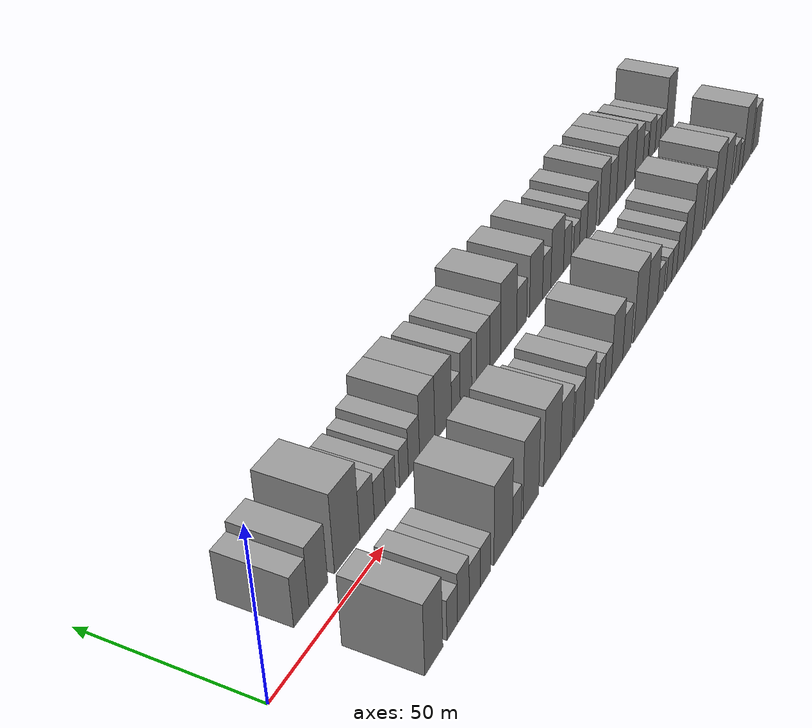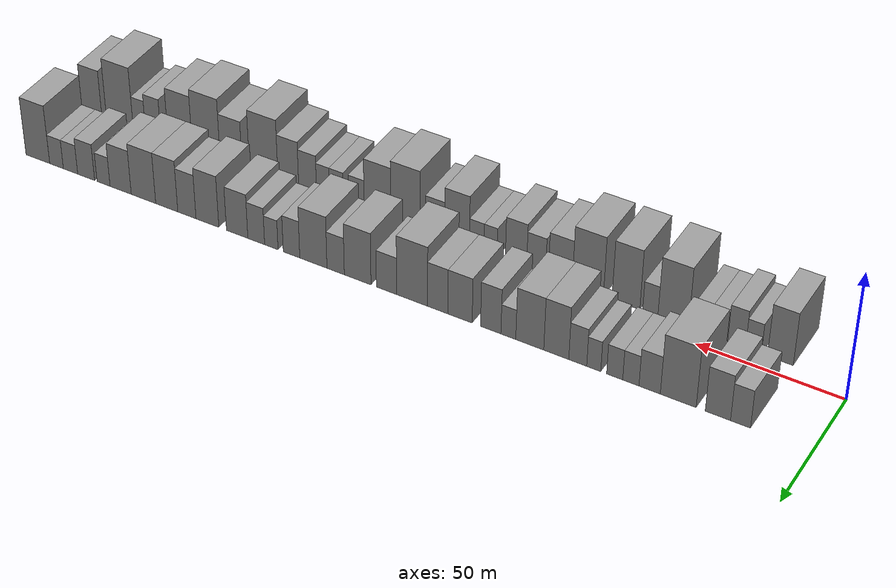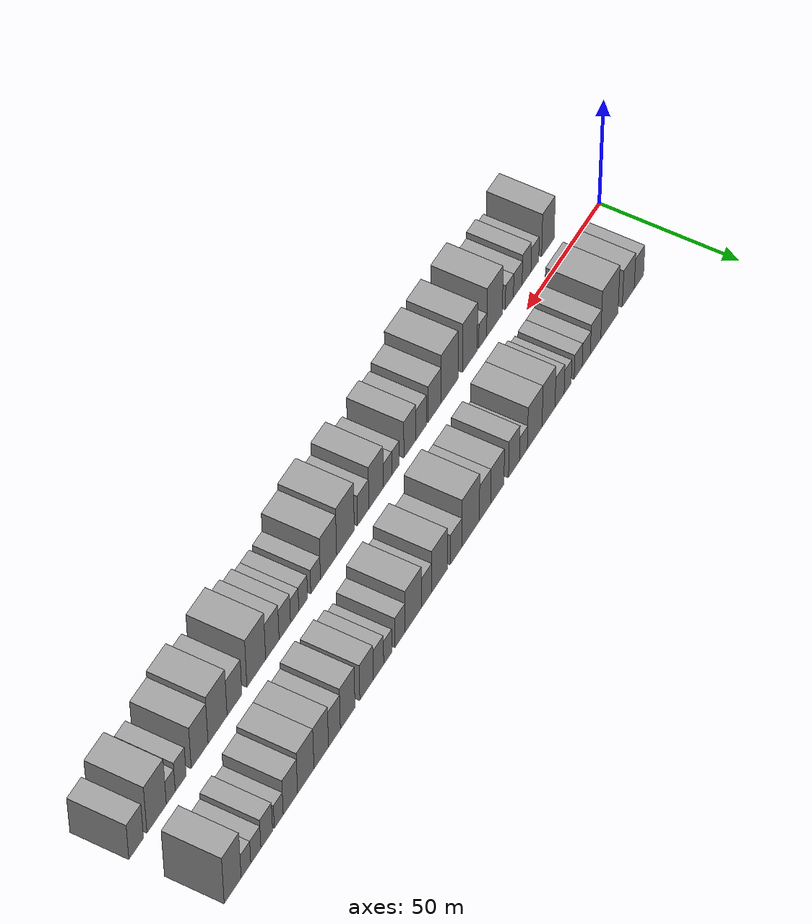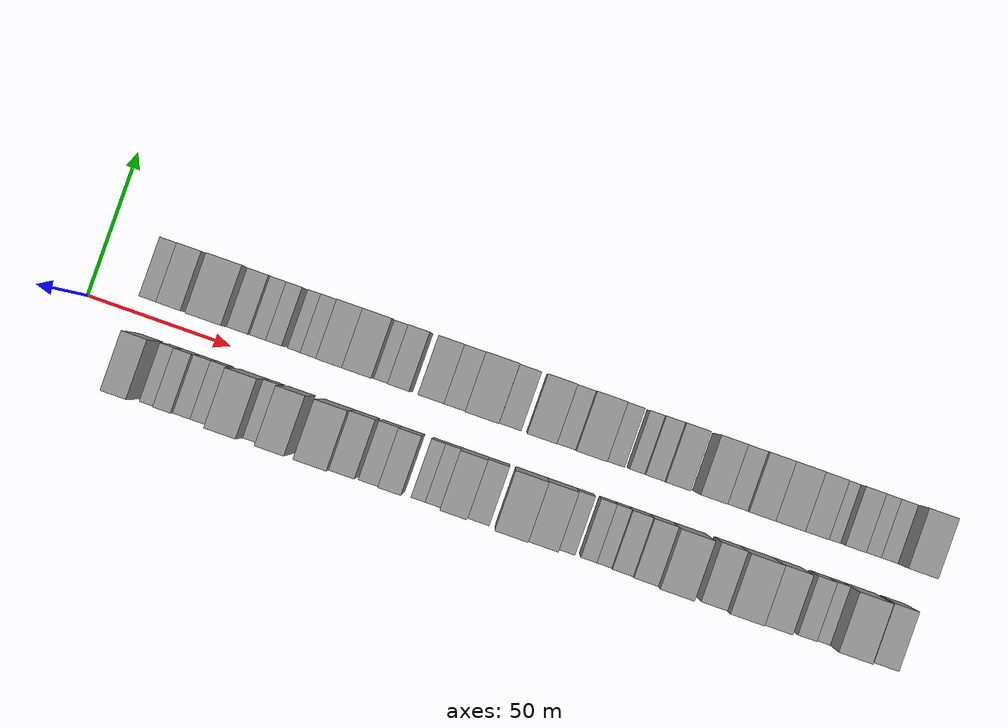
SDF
<sdf version="1.6">
 <world name="default">
  <scene>
   <sky><clouds><speed>12</speed></clouds></sky>
   <ambient>0.4 0.4 0.4 1</ambient>
   <background>0.7 0.7 0.7 1</background>
   <shadows>1</shadows>
  </scene>
  <gravity>0 0 -9.8066</gravity>
  <magnetic_field>6e-06 2.3e-05 -4.2e-05</magnetic_field>
  <physics default="0" name="default_physics" type="ode">
   <ode>
    <solver>
     <type>quick</type>
     <iters>10</iters>
     <sor>1.0</sor>
     <use_dynamic_moi_rescaling>0</use_dynamic_moi_rescaling>
    </solver>
    <constraints>
     <cfm>0</cfm>
     <erp>0.2</erp>
     <contact_max_correcting_vel>100</contact_max_correcting_vel>
     <contact_surface_layer>0.001</contact_surface_layer>
    </constraints>
   </ode>
   <max_step_size>0.004</max_step_size>
   <real_time_factor>1</real_time_factor>
   <real_time_update_rate>250</real_time_update_rate>
  </physics>
  <light name="sun" type="directional">
   <pose>0 0 10 0 0 0</pose>
   <diffuse>0.8 0.8 0.8 1</diffuse>
   <specular>0.2 0.2 0.2 1</specular>
   <attenuation>
    <range>1000</range>
    <constant>0.9</constant>
    <linear>0.01</linear>
    <quadratic>0.001</quadratic>
   </attenuation>
   <direction>-0.5 0.1 -0.9</direction>
  </light>
  <model name="building_1">
   <static>1</static>
   <pose>23.2536 16.0000 0 0.000000 0.000000 1.570796</pose>
   <link name="link">
    <pose>0 0 7.50 0 0 0</pose>
    <collision name="collision"><geometry><box><size>20.0000 6.5071 15.0000</size></box></geometry></collision>
    <visual name="visual">
     <cast_shadows>0</cast_shadows>
     <geometry><box><size>20.0000 6.5071 15.0000</size></box></geometry>
     <material>
      <script>
       <uri>model://grey_wall/materials/scripts</uri>
       <uri>model://grey_wall/materials/textures</uri>
       <name>vrc/grey_wall</name>
      </script>
     </material>
    </visual>
   </link>
  </model>
  <model name="building_2">
   <static>1</static>
   <pose>30.6471 16.0000 0 0.000000 0.000000 1.570796</pose>
   <link name="link">
    <pose>0 0 9.00 0 0 0</pose>
    <collision name="collision"><geometry><box><size>20.0000 8.2800 18.0000</size></box></geometry></collision>
    <visual name="visual">
     <cast_shadows>0</cast_shadows>
     <geometry><box><size>20.0000 8.2800 18.0000</size></box></geometry>
     <material>
      <script>
       <uri>model://grey_wall/materials/scripts</uri>
       <uri>model://grey_wall/materials/textures</uri>
       <name>vrc/grey_wall</name>
      </script>
     </material>
    </visual>
   </link>
  </model>
  <model name="building_3">
   <static>1</static>
   <pose>43.7436 16.0000 0 0.000000 0.000000 1.570796</pose>
   <link name="link">
    <pose>0 0 12.00 0 0 0</pose>
    <collision name="collision"><geometry><box><size>20.0000 11.9130 24.0000</size></box></geometry></collision>
    <visual name="visual">
     <cast_shadows>0</cast_shadows>
     <geometry><box><size>20.0000 11.9130 24.0000</size></box></geometry>
     <material>
      <script>
       <uri>model://grey_wall/materials/scripts</uri>
       <uri>model://grey_wall/materials/textures</uri>
       <name>vrc/grey_wall</name>
      </script>
     </material>
    </visual>
   </link>
  </model>
  <model name="building_4">
   <static>1</static>
   <pose>53.2787 16.0000 0 0.000000 0.000000 1.570796</pose>
   <link name="link">
    <pose>0 0 7.50 0 0 0</pose>
    <collision name="collision"><geometry><box><size>20.0000 7.1573 15.0000</size></box></geometry></collision>
    <visual name="visual">
     <cast_shadows>0</cast_shadows>
     <geometry><box><size>20.0000 7.1573 15.0000</size></box></geometry>
     <material>
      <script>
       <uri>model://grey_wall/materials/scripts</uri>
       <uri>model://grey_wall/materials/textures</uri>
       <name>vrc/grey_wall</name>
      </script>
     </material>
    </visual>
   </link>
  </model>
  <model name="building_5">
   <static>1</static>
   <pose>59.6033 16.0000 0 0.000000 0.000000 1.570796</pose>
   <link name="link">
    <pose>0 0 6.00 0 0 0</pose>
    <collision name="collision"><geometry><box><size>20.0000 5.4919 12.0000</size></box></geometry></collision>
    <visual name="visual">
     <cast_shadows>0</cast_shadows>
     <geometry><box><size>20.0000 5.4919 12.0000</size></box></geometry>
     <material>
      <script>
       <uri>model://grey_wall/materials/scripts</uri>
       <uri>model://grey_wall/materials/textures</uri>
       <name>vrc/grey_wall</name>
      </script>
     </material>
    </visual>
   </link>
  </model>
  <model name="building_6">
   <static>1</static>
   <pose>65.0794 16.0000 0 0.000000 0.000000 1.570796</pose>
   <link name="link">
    <pose>0 0 6.00 0 0 0</pose>
    <collision name="collision"><geometry><box><size>20.0000 5.4603 12.0000</size></box></geometry></collision>
    <visual name="visual">
     <cast_shadows>0</cast_shadows>
     <geometry><box><size>20.0000 5.4603 12.0000</size></box></geometry>
     <material>
      <script>
       <uri>model://grey_wall/materials/scripts</uri>
       <uri>model://grey_wall/materials/textures</uri>
       <name>vrc/grey_wall</name>
      </script>
     </material>
    </visual>
   </link>
  </model>
  <model name="building_7">
   <static>1</static>
   <pose>72.2099 16.0000 0 0.000000 0.000000 1.570796</pose>
   <link name="link">
    <pose>0 0 6.00 0 0 0</pose>
    <collision name="collision"><geometry><box><size>20.0000 4.8007 12.0000</size></box></geometry></collision>
    <visual name="visual">
     <cast_shadows>0</cast_shadows>
     <geometry><box><size>20.0000 4.8007 12.0000</size></box></geometry>
     <material>
      <script>
       <uri>model://grey_wall/materials/scripts</uri>
       <uri>model://grey_wall/materials/textures</uri>
       <name>vrc/grey_wall</name>
      </script>
     </material>
    </visual>
   </link>
  </model>
  <model name="building_8">
   <static>1</static>
   <pose>77.6935 16.0000 0 0.000000 0.000000 1.570796</pose>
   <link name="link">
    <pose>0 0 7.50 0 0 0</pose>
    <collision name="collision"><geometry><box><size>20.0000 6.1665 15.0000</size></box></geometry></collision>
    <visual name="visual">
     <cast_shadows>0</cast_shadows>
     <geometry><box><size>20.0000 6.1665 15.0000</size></box></geometry>
     <material>
      <script>
       <uri>model://grey_wall/materials/scripts</uri>
       <uri>model://grey_wall/materials/textures</uri>
       <name>vrc/grey_wall</name>
      </script>
     </material>
    </visual>
   </link>
  </model>
  <model name="building_9">
   <static>1</static>
   <pose>85.1184 16.0000 0 0.000000 0.000000 1.570796</pose>
   <link name="link">
    <pose>0 0 10.50 0 0 0</pose>
    <collision name="collision"><geometry><box><size>20.0000 8.6833 21.0000</size></box></geometry></collision>
    <visual name="visual">
     <cast_shadows>0</cast_shadows>
     <geometry><box><size>20.0000 8.6833 21.0000</size></box></geometry>
     <material>
      <script>
       <uri>model://grey_wall/materials/scripts</uri>
       <uri>model://grey_wall/materials/textures</uri>
       <name>vrc/grey_wall</name>
      </script>
     </material>
    </visual>
   </link>
  </model>
  <model name="building_10">
   <static>1</static>
   <pose>94.3664 16.0000 0 0.000000 0.000000 1.570796</pose>
   <link name="link">
    <pose>0 0 10.50 0 0 0</pose>
    <collision name="collision"><geometry><box><size>20.0000 9.8126 21.0000</size></box></geometry></collision>
    <visual name="visual">
     <cast_shadows>0</cast_shadows>
     <geometry><box><size>20.0000 9.8126 21.0000</size></box></geometry>
     <material>
      <script>
       <uri>model://grey_wall/materials/scripts</uri>
       <uri>model://grey_wall/materials/textures</uri>
       <name>vrc/grey_wall</name>
      </script>
     </material>
    </visual>
   </link>
  </model>
  <model name="building_11">
   <static>1</static>
   <pose>101.8873 16.0000 0 0.000000 0.000000 1.570796</pose>
   <link name="link">
    <pose>0 0 6.00 0 0 0</pose>
    <collision name="collision"><geometry><box><size>20.0000 5.2292 12.0000</size></box></geometry></collision>
    <visual name="visual">
     <cast_shadows>0</cast_shadows>
     <geometry><box><size>20.0000 5.2292 12.0000</size></box></geometry>
     <material>
      <script>
       <uri>model://grey_wall/materials/scripts</uri>
       <uri>model://grey_wall/materials/textures</uri>
       <name>vrc/grey_wall</name>
      </script>
     </material>
    </visual>
   </link>
  </model>
  <model name="building_12">
   <static>1</static>
   <pose>108.1177 16.0000 0 0.000000 0.000000 1.570796</pose>
   <link name="link">
    <pose>0 0 9.00 0 0 0</pose>
    <collision name="collision"><geometry><box><size>20.0000 7.2316 18.0000</size></box></geometry></collision>
    <visual name="visual">
     <cast_shadows>0</cast_shadows>
     <geometry><box><size>20.0000 7.2316 18.0000</size></box></geometry>
     <material>
      <script>
       <uri>model://grey_wall/materials/scripts</uri>
       <uri>model://grey_wall/materials/textures</uri>
       <name>vrc/grey_wall</name>
      </script>
     </material>
    </visual>
   </link>
  </model>
  <model name="building_13">
   <static>1</static>
   <pose>119.1106 16.0000 0 0.000000 0.000000 1.570796</pose>
   <link name="link">
    <pose>0 0 9.00 0 0 0</pose>
    <collision name="collision"><geometry><box><size>20.0000 8.7542 18.0000</size></box></geometry></collision>
    <visual name="visual">
     <cast_shadows>0</cast_shadows>
     <geometry><box><size>20.0000 8.7542 18.0000</size></box></geometry>
     <material>
      <script>
       <uri>model://grey_wall/materials/scripts</uri>
       <uri>model://grey_wall/materials/textures</uri>
       <name>vrc/grey_wall</name>
      </script>
     </material>
    </visual>
   </link>
  </model>
  <model name="building_14">
   <static>1</static>
   <pose>127.1599 16.0000 0 0.000000 0.000000 1.570796</pose>
   <link name="link">
    <pose>0 0 9.00 0 0 0</pose>
    <collision name="collision"><geometry><box><size>20.0000 7.3445 18.0000</size></box></geometry></collision>
    <visual name="visual">
     <cast_shadows>0</cast_shadows>
     <geometry><box><size>20.0000 7.3445 18.0000</size></box></geometry>
     <material>
      <script>
       <uri>model://grey_wall/materials/scripts</uri>
       <uri>model://grey_wall/materials/textures</uri>
       <name>vrc/grey_wall</name>
      </script>
     </material>
    </visual>
   </link>
  </model>
  <model name="building_15">
   <static>1</static>
   <pose>136.4795 16.0000 0 0.000000 0.000000 1.570796</pose>
   <link name="link">
    <pose>0 0 12.00 0 0 0</pose>
    <collision name="collision"><geometry><box><size>20.0000 11.2947 24.0000</size></box></geometry></collision>
    <visual name="visual">
     <cast_shadows>0</cast_shadows>
     <geometry><box><size>20.0000 11.2947 24.0000</size></box></geometry>
     <material>
      <script>
       <uri>model://grey_wall/materials/scripts</uri>
       <uri>model://grey_wall/materials/textures</uri>
       <name>vrc/grey_wall</name>
      </script>
     </material>
    </visual>
   </link>
  </model>
  <model name="building_16">
   <static>1</static>
   <pose>145.8373 16.0000 0 0.000000 0.000000 1.570796</pose>
   <link name="link">
    <pose>0 0 7.50 0 0 0</pose>
    <collision name="collision"><geometry><box><size>20.0000 7.4208 15.0000</size></box></geometry></collision>
    <visual name="visual">
     <cast_shadows>0</cast_shadows>
     <geometry><box><size>20.0000 7.4208 15.0000</size></box></geometry>
     <material>
      <script>
       <uri>model://grey_wall/materials/scripts</uri>
       <uri>model://grey_wall/materials/textures</uri>
       <name>vrc/grey_wall</name>
      </script>
     </material>
    </visual>
   </link>
  </model>
  <model name="building_17">
   <static>1</static>
   <pose>156.5097 16.0000 0 0.000000 0.000000 1.570796</pose>
   <link name="link">
    <pose>0 0 10.50 0 0 0</pose>
    <collision name="collision"><geometry><box><size>20.0000 9.9241 21.0000</size></box></geometry></collision>
    <visual name="visual">
     <cast_shadows>0</cast_shadows>
     <geometry><box><size>20.0000 9.9241 21.0000</size></box></geometry>
     <material>
      <script>
       <uri>model://grey_wall/materials/scripts</uri>
       <uri>model://grey_wall/materials/textures</uri>
       <name>vrc/grey_wall</name>
      </script>
     </material>
    </visual>
   </link>
  </model>
  <model name="building_18">
   <static>1</static>
   <pose>164.7365 16.0000 0 0.000000 0.000000 1.570796</pose>
   <link name="link">
    <pose>0 0 7.50 0 0 0</pose>
    <collision name="collision"><geometry><box><size>20.0000 6.5295 15.0000</size></box></geometry></collision>
    <visual name="visual">
     <cast_shadows>0</cast_shadows>
     <geometry><box><size>20.0000 6.5295 15.0000</size></box></geometry>
     <material>
      <script>
       <uri>model://grey_wall/materials/scripts</uri>
       <uri>model://grey_wall/materials/textures</uri>
       <name>vrc/grey_wall</name>
      </script>
     </material>
    </visual>
   </link>
  </model>
  <model name="building_19">
   <static>1</static>
   <pose>173.1474 16.0000 0 0.000000 0.000000 1.570796</pose>
   <link name="link">
    <pose>0 0 10.50 0 0 0</pose>
    <collision name="collision"><geometry><box><size>20.0000 10.2923 21.0000</size></box></geometry></collision>
    <visual name="visual">
     <cast_shadows>0</cast_shadows>
     <geometry><box><size>20.0000 10.2923 21.0000</size></box></geometry>
     <material>
      <script>
       <uri>model://grey_wall/materials/scripts</uri>
       <uri>model://grey_wall/materials/textures</uri>
       <name>vrc/grey_wall</name>
      </script>
     </material>
    </visual>
   </link>
  </model>
  <model name="building_20">
   <static>1</static>
   <pose>181.4488 16.0000 0 0.000000 0.000000 1.570796</pose>
   <link name="link">
    <pose>0 0 7.50 0 0 0</pose>
    <collision name="collision"><geometry><box><size>20.0000 6.3106 15.0000</size></box></geometry></collision>
    <visual name="visual">
     <cast_shadows>0</cast_shadows>
     <geometry><box><size>20.0000 6.3106 15.0000</size></box></geometry>
     <material>
      <script>
       <uri>model://grey_wall/materials/scripts</uri>
       <uri>model://grey_wall/materials/textures</uri>
       <name>vrc/grey_wall</name>
      </script>
     </material>
    </visual>
   </link>
  </model>
  <model name="building_21">
   <static>1</static>
   <pose>189.1757 16.0000 0 0.000000 0.000000 1.570796</pose>
   <link name="link">
    <pose>0 0 6.00 0 0 0</pose>
    <collision name="collision"><geometry><box><size>20.0000 5.1431 12.0000</size></box></geometry></collision>
    <visual name="visual">
     <cast_shadows>0</cast_shadows>
     <geometry><box><size>20.0000 5.1431 12.0000</size></box></geometry>
     <material>
      <script>
       <uri>model://grey_wall/materials/scripts</uri>
       <uri>model://grey_wall/materials/textures</uri>
       <name>vrc/grey_wall</name>
      </script>
     </material>
    </visual>
   </link>
  </model>
  <model name="building_22">
   <static>1</static>
   <pose>194.9975 16.0000 0 0.000000 0.000000 1.570796</pose>
   <link name="link">
    <pose>0 0 7.50 0 0 0</pose>
    <collision name="collision"><geometry><box><size>20.0000 6.5005 15.0000</size></box></geometry></collision>
    <visual name="visual">
     <cast_shadows>0</cast_shadows>
     <geometry><box><size>20.0000 6.5005 15.0000</size></box></geometry>
     <material>
      <script>
       <uri>model://grey_wall/materials/scripts</uri>
       <uri>model://grey_wall/materials/textures</uri>
       <name>vrc/grey_wall</name>
      </script>
     </material>
    </visual>
   </link>
  </model>
  <model name="building_23">
   <static>1</static>
   <pose>202.4056 16.0000 0 0.000000 0.000000 1.570796</pose>
   <link name="link">
    <pose>0 0 9.00 0 0 0</pose>
    <collision name="collision"><geometry><box><size>20.0000 8.3157 18.0000</size></box></geometry></collision>
    <visual name="visual">
     <cast_shadows>0</cast_shadows>
     <geometry><box><size>20.0000 8.3157 18.0000</size></box></geometry>
     <material>
      <script>
       <uri>model://grey_wall/materials/scripts</uri>
       <uri>model://grey_wall/materials/textures</uri>
       <name>vrc/grey_wall</name>
      </script>
     </material>
    </visual>
   </link>
  </model>
  <model name="building_24">
   <static>1</static>
   <pose>214.0579 16.0000 0 0.000000 0.000000 1.570796</pose>
   <link name="link">
    <pose>0 0 10.50 0 0 0</pose>
    <collision name="collision"><geometry><box><size>20.0000 8.9889 21.0000</size></box></geometry></collision>
    <visual name="visual">
     <cast_shadows>0</cast_shadows>
     <geometry><box><size>20.0000 8.9889 21.0000</size></box></geometry>
     <material>
      <script>
       <uri>model://grey_wall/materials/scripts</uri>
       <uri>model://grey_wall/materials/textures</uri>
       <name>vrc/grey_wall</name>
      </script>
     </material>
    </visual>
   </link>
  </model>
  <model name="building_25">
   <static>1</static>
   <pose>222.1660 16.0000 0 0.000000 0.000000 1.570796</pose>
   <link name="link">
    <pose>0 0 9.00 0 0 0</pose>
    <collision name="collision"><geometry><box><size>20.0000 7.2274 18.0000</size></box></geometry></collision>
    <visual name="visual">
     <cast_shadows>0</cast_shadows>
     <geometry><box><size>20.0000 7.2274 18.0000</size></box></geometry>
     <material>
      <script>
       <uri>model://grey_wall/materials/scripts</uri>
       <uri>model://grey_wall/materials/textures</uri>
       <name>vrc/grey_wall</name>
      </script>
     </material>
    </visual>
   </link>
  </model>
  <model name="building_26">
   <static>1</static>
   <pose>230.1992 16.0000 0 0.000000 0.000000 1.570796</pose>
   <link name="link">
    <pose>0 0 10.50 0 0 0</pose>
    <collision name="collision"><geometry><box><size>20.0000 8.8390 21.0000</size></box></geometry></collision>
    <visual name="visual">
     <cast_shadows>0</cast_shadows>
     <geometry><box><size>20.0000 8.8390 21.0000</size></box></geometry>
     <material>
      <script>
       <uri>model://grey_wall/materials/scripts</uri>
       <uri>model://grey_wall/materials/textures</uri>
       <name>vrc/grey_wall</name>
      </script>
     </material>
    </visual>
   </link>
  </model>
  <model name="building_27">
   <static>1</static>
   <pose>239.5601 16.0000 0 0.000000 0.000000 1.570796</pose>
   <link name="link">
    <pose>0 0 10.50 0 0 0</pose>
    <collision name="collision"><geometry><box><size>20.0000 9.8829 21.0000</size></box></geometry></collision>
    <visual name="visual">
     <cast_shadows>0</cast_shadows>
     <geometry><box><size>20.0000 9.8829 21.0000</size></box></geometry>
     <material>
      <script>
       <uri>model://grey_wall/materials/scripts</uri>
       <uri>model://grey_wall/materials/textures</uri>
       <name>vrc/grey_wall</name>
      </script>
     </material>
    </visual>
   </link>
  </model>
  <model name="building_28">
   <static>1</static>
   <pose>248.8117 16.0000 0 0.000000 0.000000 1.570796</pose>
   <link name="link">
    <pose>0 0 9.00 0 0 0</pose>
    <collision name="collision"><geometry><box><size>20.0000 8.6202 18.0000</size></box></geometry></collision>
    <visual name="visual">
     <cast_shadows>0</cast_shadows>
     <geometry><box><size>20.0000 8.6202 18.0000</size></box></geometry>
     <material>
      <script>
       <uri>model://grey_wall/materials/scripts</uri>
       <uri>model://grey_wall/materials/textures</uri>
       <name>vrc/grey_wall</name>
      </script>
     </material>
    </visual>
   </link>
  </model>
  <model name="building_29">
   <static>1</static>
   <pose>255.7878 16.0000 0 0.000000 0.000000 1.570796</pose>
   <link name="link">
    <pose>0 0 6.00 0 0 0</pose>
    <collision name="collision"><geometry><box><size>20.0000 5.3321 12.0000</size></box></geometry></collision>
    <visual name="visual">
     <cast_shadows>0</cast_shadows>
     <geometry><box><size>20.0000 5.3321 12.0000</size></box></geometry>
     <material>
      <script>
       <uri>model://grey_wall/materials/scripts</uri>
       <uri>model://grey_wall/materials/textures</uri>
       <name>vrc/grey_wall</name>
      </script>
     </material>
    </visual>
   </link>
  </model>
  <model name="building_30">
   <static>1</static>
   <pose>262.9445 16.0000 0 0.000000 0.000000 1.570796</pose>
   <link name="link">
    <pose>0 0 7.50 0 0 0</pose>
    <collision name="collision"><geometry><box><size>20.0000 6.9812 15.0000</size></box></geometry></collision>
    <visual name="visual">
     <cast_shadows>0</cast_shadows>
     <geometry><box><size>20.0000 6.9812 15.0000</size></box></geometry>
     <material>
      <script>
       <uri>model://grey_wall/materials/scripts</uri>
       <uri>model://grey_wall/materials/textures</uri>
       <name>vrc/grey_wall</name>
      </script>
     </material>
    </visual>
   </link>
  </model>
  <model name="building_31">
   <static>1</static>
   <pose>269.4134 16.0000 0 0.000000 0.000000 1.570796</pose>
   <link name="link">
    <pose>0 0 6.00 0 0 0</pose>
    <collision name="collision"><geometry><box><size>20.0000 5.9566 12.0000</size></box></geometry></collision>
    <visual name="visual">
     <cast_shadows>0</cast_shadows>
     <geometry><box><size>20.0000 5.9566 12.0000</size></box></geometry>
     <material>
      <script>
       <uri>model://grey_wall/materials/scripts</uri>
       <uri>model://grey_wall/materials/textures</uri>
       <name>vrc/grey_wall</name>
      </script>
     </material>
    </visual>
   </link>
  </model>
  <model name="building_32">
   <static>1</static>
   <pose>275.2357 16.0000 0 0.000000 0.000000 1.570796</pose>
   <link name="link">
    <pose>0 0 6.00 0 0 0</pose>
    <collision name="collision"><geometry><box><size>20.0000 5.6882 12.0000</size></box></geometry></collision>
    <visual name="visual">
     <cast_shadows>0</cast_shadows>
     <geometry><box><size>20.0000 5.6882 12.0000</size></box></geometry>
     <material>
      <script>
       <uri>model://grey_wall/materials/scripts</uri>
       <uri>model://grey_wall/materials/textures</uri>
       <name>vrc/grey_wall</name>
      </script>
     </material>
    </visual>
   </link>
  </model>
  <model name="building_33">
   <static>1</static>
   <pose>283.0482 16.0000 0 0.000000 0.000000 1.570796</pose>
   <link name="link">
    <pose>0 0 12.00 0 0 0</pose>
    <collision name="collision"><geometry><box><size>20.0000 9.9367 24.0000</size></box></geometry></collision>
    <visual name="visual">
     <cast_shadows>0</cast_shadows>
     <geometry><box><size>20.0000 9.9367 24.0000</size></box></geometry>
     <material>
      <script>
       <uri>model://grey_wall/materials/scripts</uri>
       <uri>model://grey_wall/materials/textures</uri>
       <name>vrc/grey_wall</name>
      </script>
     </material>
    </visual>
   </link>
  </model>
  <model name="building_34">
   <static>1</static>
   <pose>24.3035 -16.0000 0 0.000000 0.000000 1.570796</pose>
   <link name="link">
    <pose>0 0 10.50 0 0 0</pose>
    <collision name="collision"><geometry><box><size>20.0000 8.6070 21.0000</size></box></geometry></collision>
    <visual name="visual">
     <cast_shadows>0</cast_shadows>
     <geometry><box><size>20.0000 8.6070 21.0000</size></box></geometry>
     <material>
      <script>
       <uri>model://grey_wall/materials/scripts</uri>
       <uri>model://grey_wall/materials/textures</uri>
       <name>vrc/grey_wall</name>
      </script>
     </material>
    </visual>
   </link>
  </model>
  <model name="building_35">
   <static>1</static>
   <pose>33.2654 -16.0000 0 0.000000 0.000000 1.570796</pose>
   <link name="link">
    <pose>0 0 6.00 0 0 0</pose>
    <collision name="collision"><geometry><box><size>20.0000 5.3167 12.0000</size></box></geometry></collision>
    <visual name="visual">
     <cast_shadows>0</cast_shadows>
     <geometry><box><size>20.0000 5.3167 12.0000</size></box></geometry>
     <material>
      <script>
       <uri>model://grey_wall/materials/scripts</uri>
       <uri>model://grey_wall/materials/textures</uri>
       <name>vrc/grey_wall</name>
      </script>
     </material>
    </visual>
   </link>
  </model>
  <model name="building_36">
   <static>1</static>
   <pose>38.9494 -16.0000 0 0.000000 0.000000 1.570796</pose>
   <link name="link">
    <pose>0 0 7.50 0 0 0</pose>
    <collision name="collision"><geometry><box><size>20.0000 6.0513 15.0000</size></box></geometry></collision>
    <visual name="visual">
     <cast_shadows>0</cast_shadows>
     <geometry><box><size>20.0000 6.0513 15.0000</size></box></geometry>
     <material>
      <script>
       <uri>model://grey_wall/materials/scripts</uri>
       <uri>model://grey_wall/materials/textures</uri>
       <name>vrc/grey_wall</name>
      </script>
     </material>
    </visual>
   </link>
  </model>
  <model name="building_37">
   <static>1</static>
   <pose>44.9070 -16.0000 0 0.000000 0.000000 1.570796</pose>
   <link name="link">
    <pose>0 0 6.00 0 0 0</pose>
    <collision name="collision"><geometry><box><size>20.0000 5.8639 12.0000</size></box></geometry></collision>
    <visual name="visual">
     <cast_shadows>0</cast_shadows>
     <geometry><box><size>20.0000 5.8639 12.0000</size></box></geometry>
     <material>
      <script>
       <uri>model://grey_wall/materials/scripts</uri>
       <uri>model://grey_wall/materials/textures</uri>
       <name>vrc/grey_wall</name>
      </script>
     </material>
    </visual>
   </link>
  </model>
  <model name="building_38">
   <static>1</static>
   <pose>50.5661 -16.0000 0 0.000000 0.000000 1.570796</pose>
   <link name="link">
    <pose>0 0 6.00 0 0 0</pose>
    <collision name="collision"><geometry><box><size>20.0000 5.4542 12.0000</size></box></geometry></collision>
    <visual name="visual">
     <cast_shadows>0</cast_shadows>
     <geometry><box><size>20.0000 5.4542 12.0000</size></box></geometry>
     <material>
      <script>
       <uri>model://grey_wall/materials/scripts</uri>
       <uri>model://grey_wall/materials/textures</uri>
       <name>vrc/grey_wall</name>
      </script>
     </material>
    </visual>
   </link>
  </model>
  <model name="building_39">
   <static>1</static>
   <pose>60.5806 -16.0000 0 0.000000 0.000000 1.570796</pose>
   <link name="link">
    <pose>0 0 12.00 0 0 0</pose>
    <collision name="collision"><geometry><box><size>20.0000 10.5749 24.0000</size></box></geometry></collision>
    <visual name="visual">
     <cast_shadows>0</cast_shadows>
     <geometry><box><size>20.0000 10.5749 24.0000</size></box></geometry>
     <material>
      <script>
       <uri>model://grey_wall/materials/scripts</uri>
       <uri>model://grey_wall/materials/textures</uri>
       <name>vrc/grey_wall</name>
      </script>
     </material>
    </visual>
   </link>
  </model>
  <model name="building_40">
   <static>1</static>
   <pose>68.5174 -16.0000 0 0.000000 0.000000 1.570796</pose>
   <link name="link">
    <pose>0 0 6.00 0 0 0</pose>
    <collision name="collision"><geometry><box><size>20.0000 5.2987 12.0000</size></box></geometry></collision>
    <visual name="visual">
     <cast_shadows>0</cast_shadows>
     <geometry><box><size>20.0000 5.2987 12.0000</size></box></geometry>
     <material>
      <script>
       <uri>model://grey_wall/materials/scripts</uri>
       <uri>model://grey_wall/materials/textures</uri>
       <name>vrc/grey_wall</name>
      </script>
     </material>
    </visual>
   </link>
  </model>
  <model name="building_41">
   <static>1</static>
   <pose>77.0523 -16.0000 0 0.000000 0.000000 1.570796</pose>
   <link name="link">
    <pose>0 0 12.00 0 0 0</pose>
    <collision name="collision"><geometry><box><size>20.0000 9.7711 24.0000</size></box></geometry></collision>
    <visual name="visual">
     <cast_shadows>0</cast_shadows>
     <geometry><box><size>20.0000 9.7711 24.0000</size></box></geometry>
     <material>
      <script>
       <uri>model://grey_wall/materials/scripts</uri>
       <uri>model://grey_wall/materials/textures</uri>
       <name>vrc/grey_wall</name>
      </script>
     </material>
    </visual>
   </link>
  </model>
  <model name="building_42">
   <static>1</static>
   <pose>90.4719 -16.0000 0 0.000000 0.000000 1.570796</pose>
   <link name="link">
    <pose>0 0 12.00 0 0 0</pose>
    <collision name="collision"><geometry><box><size>20.0000 11.0682 24.0000</size></box></geometry></collision>
    <visual name="visual">
     <cast_shadows>0</cast_shadows>
     <geometry><box><size>20.0000 11.0682 24.0000</size></box></geometry>
     <material>
      <script>
       <uri>model://grey_wall/materials/scripts</uri>
       <uri>model://grey_wall/materials/textures</uri>
       <name>vrc/grey_wall</name>
      </script>
     </material>
    </visual>
   </link>
  </model>
  <model name="building_43">
   <static>1</static>
   <pose>100.3113 -16.0000 0 0.000000 0.000000 1.570796</pose>
   <link name="link">
    <pose>0 0 9.00 0 0 0</pose>
    <collision name="collision"><geometry><box><size>20.0000 8.6107 18.0000</size></box></geometry></collision>
    <visual name="visual">
     <cast_shadows>0</cast_shadows>
     <geometry><box><size>20.0000 8.6107 18.0000</size></box></geometry>
     <material>
      <script>
       <uri>model://grey_wall/materials/scripts</uri>
       <uri>model://grey_wall/materials/textures</uri>
       <name>vrc/grey_wall</name>
      </script>
     </material>
    </visual>
   </link>
  </model>
  <model name="building_44">
   <static>1</static>
   <pose>109.0519 -16.0000 0 0.000000 0.000000 1.570796</pose>
   <link name="link">
    <pose>0 0 7.50 0 0 0</pose>
    <collision name="collision"><geometry><box><size>20.0000 6.8704 15.0000</size></box></geometry></collision>
    <visual name="visual">
     <cast_shadows>0</cast_shadows>
     <geometry><box><size>20.0000 6.8704 15.0000</size></box></geometry>
     <material>
      <script>
       <uri>model://grey_wall/materials/scripts</uri>
       <uri>model://grey_wall/materials/textures</uri>
       <name>vrc/grey_wall</name>
      </script>
     </material>
    </visual>
   </link>
  </model>
  <model name="building_45">
   <static>1</static>
   <pose>116.3796 -16.0000 0 0.000000 0.000000 1.570796</pose>
   <link name="link">
    <pose>0 0 9.00 0 0 0</pose>
    <collision name="collision"><geometry><box><size>20.0000 7.7850 18.0000</size></box></geometry></collision>
    <visual name="visual">
     <cast_shadows>0</cast_shadows>
     <geometry><box><size>20.0000 7.7850 18.0000</size></box></geometry>
     <material>
      <script>
       <uri>model://grey_wall/materials/scripts</uri>
       <uri>model://grey_wall/materials/textures</uri>
       <name>vrc/grey_wall</name>
      </script>
     </material>
    </visual>
   </link>
  </model>
  <model name="building_46">
   <static>1</static>
   <pose>125.6897 -16.0000 0 0.000000 0.000000 1.570796</pose>
   <link name="link">
    <pose>0 0 6.00 0 0 0</pose>
    <collision name="collision"><geometry><box><size>20.0000 4.8353 12.0000</size></box></geometry></collision>
    <visual name="visual">
     <cast_shadows>0</cast_shadows>
     <geometry><box><size>20.0000 4.8353 12.0000</size></box></geometry>
     <material>
      <script>
       <uri>model://grey_wall/materials/scripts</uri>
       <uri>model://grey_wall/materials/textures</uri>
       <name>vrc/grey_wall</name>
      </script>
     </material>
    </visual>
   </link>
  </model>
  <model name="building_47">
   <static>1</static>
   <pose>130.8172 -16.0000 0 0.000000 0.000000 1.570796</pose>
   <link name="link">
    <pose>0 0 6.00 0 0 0</pose>
    <collision name="collision"><geometry><box><size>20.0000 5.4197 12.0000</size></box></geometry></collision>
    <visual name="visual">
     <cast_shadows>0</cast_shadows>
     <geometry><box><size>20.0000 5.4197 12.0000</size></box></geometry>
     <material>
      <script>
       <uri>model://grey_wall/materials/scripts</uri>
       <uri>model://grey_wall/materials/textures</uri>
       <name>vrc/grey_wall</name>
      </script>
     </material>
    </visual>
   </link>
  </model>
  <model name="building_48">
   <static>1</static>
   <pose>138.1434 -16.0000 0 0.000000 0.000000 1.570796</pose>
   <link name="link">
    <pose>0 0 10.50 0 0 0</pose>
    <collision name="collision"><geometry><box><size>20.0000 9.2328 21.0000</size></box></geometry></collision>
    <visual name="visual">
     <cast_shadows>0</cast_shadows>
     <geometry><box><size>20.0000 9.2328 21.0000</size></box></geometry>
     <material>
      <script>
       <uri>model://grey_wall/materials/scripts</uri>
       <uri>model://grey_wall/materials/textures</uri>
       <name>vrc/grey_wall</name>
      </script>
     </material>
    </visual>
   </link>
  </model>
  <model name="building_49">
   <static>1</static>
   <pose>146.3734 -16.0000 0 0.000000 0.000000 1.570796</pose>
   <link name="link">
    <pose>0 0 7.50 0 0 0</pose>
    <collision name="collision"><geometry><box><size>20.0000 7.2271 15.0000</size></box></geometry></collision>
    <visual name="visual">
     <cast_shadows>0</cast_shadows>
     <geometry><box><size>20.0000 7.2271 15.0000</size></box></geometry>
     <material>
      <script>
       <uri>model://grey_wall/materials/scripts</uri>
       <uri>model://grey_wall/materials/textures</uri>
       <name>vrc/grey_wall</name>
      </script>
     </material>
    </visual>
   </link>
  </model>
  <model name="building_50">
   <static>1</static>
   <pose>157.5464 -16.0000 0 0.000000 0.000000 1.570796</pose>
   <link name="link">
    <pose>0 0 12.00 0 0 0</pose>
    <collision name="collision"><geometry><box><size>20.0000 11.1189 24.0000</size></box></geometry></collision>
    <visual name="visual">
     <cast_shadows>0</cast_shadows>
     <geometry><box><size>20.0000 11.1189 24.0000</size></box></geometry>
     <material>
      <script>
       <uri>model://grey_wall/materials/scripts</uri>
       <uri>model://grey_wall/materials/textures</uri>
       <name>vrc/grey_wall</name>
      </script>
     </material>
    </visual>
   </link>
  </model>
  <model name="building_51">
   <static>1</static>
   <pose>168.1770 -16.0000 0 0.000000 0.000000 1.570796</pose>
   <link name="link">
    <pose>0 0 10.50 0 0 0</pose>
    <collision name="collision"><geometry><box><size>20.0000 10.1422 21.0000</size></box></geometry></collision>
    <visual name="visual">
     <cast_shadows>0</cast_shadows>
     <geometry><box><size>20.0000 10.1422 21.0000</size></box></geometry>
     <material>
      <script>
       <uri>model://grey_wall/materials/scripts</uri>
       <uri>model://grey_wall/materials/textures</uri>
       <name>vrc/grey_wall</name>
      </script>
     </material>
    </visual>
   </link>
  </model>
  <model name="building_52">
   <static>1</static>
   <pose>176.2465 -16.0000 0 0.000000 0.000000 1.570796</pose>
   <link name="link">
    <pose>0 0 6.00 0 0 0</pose>
    <collision name="collision"><geometry><box><size>20.0000 5.9969 12.0000</size></box></geometry></collision>
    <visual name="visual">
     <cast_shadows>0</cast_shadows>
     <geometry><box><size>20.0000 5.9969 12.0000</size></box></geometry>
     <material>
      <script>
       <uri>model://grey_wall/materials/scripts</uri>
       <uri>model://grey_wall/materials/textures</uri>
       <name>vrc/grey_wall</name>
      </script>
     </material>
    </visual>
   </link>
  </model>
  <model name="building_53">
   <static>1</static>
   <pose>183.9677 -16.0000 0 0.000000 0.000000 1.570796</pose>
   <link name="link">
    <pose>0 0 6.00 0 0 0</pose>
    <collision name="collision"><geometry><box><size>20.0000 5.4454 12.0000</size></box></geometry></collision>
    <visual name="visual">
     <cast_shadows>0</cast_shadows>
     <geometry><box><size>20.0000 5.4454 12.0000</size></box></geometry>
     <material>
      <script>
       <uri>model://grey_wall/materials/scripts</uri>
       <uri>model://grey_wall/materials/textures</uri>
       <name>vrc/grey_wall</name>
      </script>
     </material>
    </visual>
   </link>
  </model>
  <model name="building_54">
   <static>1</static>
   <pose>189.2339 -16.0000 0 0.000000 0.000000 1.570796</pose>
   <link name="link">
    <pose>0 0 6.00 0 0 0</pose>
    <collision name="collision"><geometry><box><size>20.0000 5.0870 12.0000</size></box></geometry></collision>
    <visual name="visual">
     <cast_shadows>0</cast_shadows>
     <geometry><box><size>20.0000 5.0870 12.0000</size></box></geometry>
     <material>
      <script>
       <uri>model://grey_wall/materials/scripts</uri>
       <uri>model://grey_wall/materials/textures</uri>
       <name>vrc/grey_wall</name>
      </script>
     </material>
    </visual>
   </link>
  </model>
  <model name="building_55">
   <static>1</static>
   <pose>195.2907 -16.0000 0 0.000000 0.000000 1.570796</pose>
   <link name="link">
    <pose>0 0 7.50 0 0 0</pose>
    <collision name="collision"><geometry><box><size>20.0000 7.0265 15.0000</size></box></geometry></collision>
    <visual name="visual">
     <cast_shadows>0</cast_shadows>
     <geometry><box><size>20.0000 7.0265 15.0000</size></box></geometry>
     <material>
      <script>
       <uri>model://grey_wall/materials/scripts</uri>
       <uri>model://grey_wall/materials/textures</uri>
       <name>vrc/grey_wall</name>
      </script>
     </material>
    </visual>
   </link>
  </model>
  <model name="building_56">
   <static>1</static>
   <pose>202.9043 -16.0000 0 0.000000 0.000000 1.570796</pose>
   <link name="link">
    <pose>0 0 9.00 0 0 0</pose>
    <collision name="collision"><geometry><box><size>20.0000 8.2007 18.0000</size></box></geometry></collision>
    <visual name="visual">
     <cast_shadows>0</cast_shadows>
     <geometry><box><size>20.0000 8.2007 18.0000</size></box></geometry>
     <material>
      <script>
       <uri>model://grey_wall/materials/scripts</uri>
       <uri>model://grey_wall/materials/textures</uri>
       <name>vrc/grey_wall</name>
      </script>
     </material>
    </visual>
   </link>
  </model>
  <model name="building_57">
   <static>1</static>
   <pose>212.7008 -16.0000 0 0.000000 0.000000 1.570796</pose>
   <link name="link">
    <pose>0 0 12.00 0 0 0</pose>
    <collision name="collision"><geometry><box><size>20.0000 11.3923 24.0000</size></box></geometry></collision>
    <visual name="visual">
     <cast_shadows>0</cast_shadows>
     <geometry><box><size>20.0000 11.3923 24.0000</size></box></geometry>
     <material>
      <script>
       <uri>model://grey_wall/materials/scripts</uri>
       <uri>model://grey_wall/materials/textures</uri>
       <name>vrc/grey_wall</name>
      </script>
     </material>
    </visual>
   </link>
  </model>
  <model name="building_58">
   <static>1</static>
   <pose>225.8445 -16.0000 0 0.000000 0.000000 1.570796</pose>
   <link name="link">
    <pose>0 0 9.00 0 0 0</pose>
    <collision name="collision"><geometry><box><size>20.0000 8.8952 18.0000</size></box></geometry></collision>
    <visual name="visual">
     <cast_shadows>0</cast_shadows>
     <geometry><box><size>20.0000 8.8952 18.0000</size></box></geometry>
     <material>
      <script>
       <uri>model://grey_wall/materials/scripts</uri>
       <uri>model://grey_wall/materials/textures</uri>
       <name>vrc/grey_wall</name>
      </script>
     </material>
    </visual>
   </link>
  </model>
  <model name="building_59">
   <static>1</static>
   <pose>235.9710 -16.0000 0 0.000000 0.000000 1.570796</pose>
   <link name="link">
    <pose>0 0 12.00 0 0 0</pose>
    <collision name="collision"><geometry><box><size>20.0000 11.3577 24.0000</size></box></geometry></collision>
    <visual name="visual">
     <cast_shadows>0</cast_shadows>
     <geometry><box><size>20.0000 11.3577 24.0000</size></box></geometry>
     <material>
      <script>
       <uri>model://grey_wall/materials/scripts</uri>
       <uri>model://grey_wall/materials/textures</uri>
       <name>vrc/grey_wall</name>
      </script>
     </material>
    </visual>
   </link>
  </model>
  <model name="building_60">
   <static>1</static>
   <pose>246.6496 -16.0000 0 0.000000 0.000000 1.570796</pose>
   <link name="link">
    <pose>0 0 10.50 0 0 0</pose>
    <collision name="collision"><geometry><box><size>20.0000 9.9995 21.0000</size></box></geometry></collision>
    <visual name="visual">
     <cast_shadows>0</cast_shadows>
     <geometry><box><size>20.0000 9.9995 21.0000</size></box></geometry>
     <material>
      <script>
       <uri>model://grey_wall/materials/scripts</uri>
       <uri>model://grey_wall/materials/textures</uri>
       <name>vrc/grey_wall</name>
      </script>
     </material>
    </visual>
   </link>
  </model>
  <model name="building_61">
   <static>1</static>
   <pose>257.8524 -16.0000 0 0.000000 0.000000 1.570796</pose>
   <link name="link">
    <pose>0 0 7.50 0 0 0</pose>
    <collision name="collision"><geometry><box><size>20.0000 6.4060 15.0000</size></box></geometry></collision>
    <visual name="visual">
     <cast_shadows>0</cast_shadows>
     <geometry><box><size>20.0000 6.4060 15.0000</size></box></geometry>
     <material>
      <script>
       <uri>model://grey_wall/materials/scripts</uri>
       <uri>model://grey_wall/materials/textures</uri>
       <name>vrc/grey_wall</name>
      </script>
     </material>
    </visual>
   </link>
  </model>
  <model name="building_62">
   <static>1</static>
   <pose>263.6656 -16.0000 0 0.000000 0.000000 1.570796</pose>
   <link name="link">
    <pose>0 0 6.00 0 0 0</pose>
    <collision name="collision"><geometry><box><size>20.0000 5.2204 12.0000</size></box></geometry></collision>
    <visual name="visual">
     <cast_shadows>0</cast_shadows>
     <geometry><box><size>20.0000 5.2204 12.0000</size></box></geometry>
     <material>
      <script>
       <uri>model://grey_wall/materials/scripts</uri>
       <uri>model://grey_wall/materials/textures</uri>
       <name>vrc/grey_wall</name>
      </script>
     </material>
    </visual>
   </link>
  </model>
  <model name="building_63">
   <static>1</static>
   <pose>271.9209 -16.0000 0 0.000000 0.000000 1.570796</pose>
   <link name="link">
    <pose>0 0 12.00 0 0 0</pose>
    <collision name="collision"><geometry><box><size>20.0000 11.2901 24.0000</size></box></geometry></collision>
    <visual name="visual">
     <cast_shadows>0</cast_shadows>
     <geometry><box><size>20.0000 11.2901 24.0000</size></box></geometry>
     <material>
      <script>
       <uri>model://grey_wall/materials/scripts</uri>
       <uri>model://grey_wall/materials/textures</uri>
       <name>vrc/grey_wall</name>
      </script>
     </material>
    </visual>
   </link>
  </model>
  <model name="building_64">
   <static>1</static>
   <pose>283.7841 -16.0000 0 0.000000 0.000000 1.570796</pose>
   <link name="link">
    <pose>0 0 9.00 0 0 0</pose>
    <collision name="collision"><geometry><box><size>20.0000 8.4363 18.0000</size></box></geometry></collision>
    <visual name="visual">
     <cast_shadows>0</cast_shadows>
     <geometry><box><size>20.0000 8.4363 18.0000</size></box></geometry>
     <material>
      <script>
       <uri>model://grey_wall/materials/scripts</uri>
       <uri>model://grey_wall/materials/textures</uri>
       <name>vrc/grey_wall</name>
      </script>
     </material>
    </visual>
   </link>
  </model>
 </world>
</sdf>
